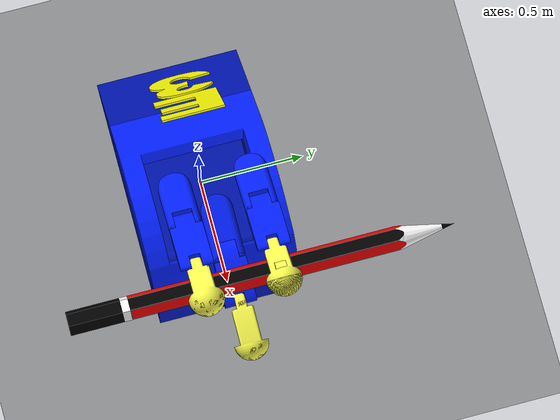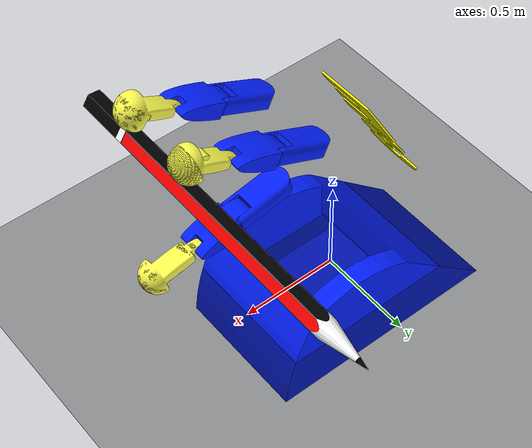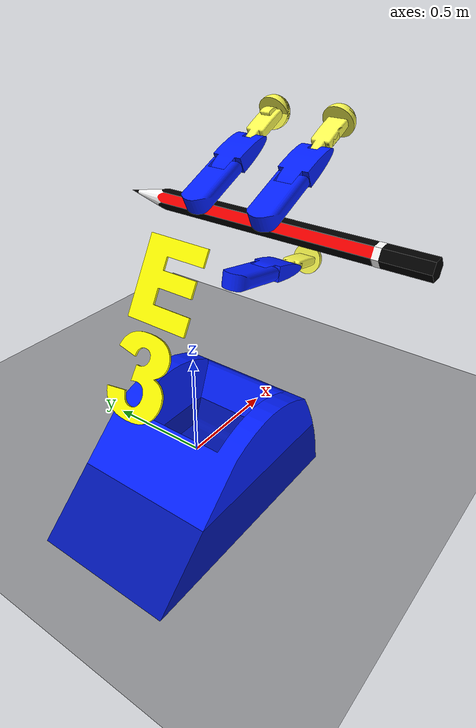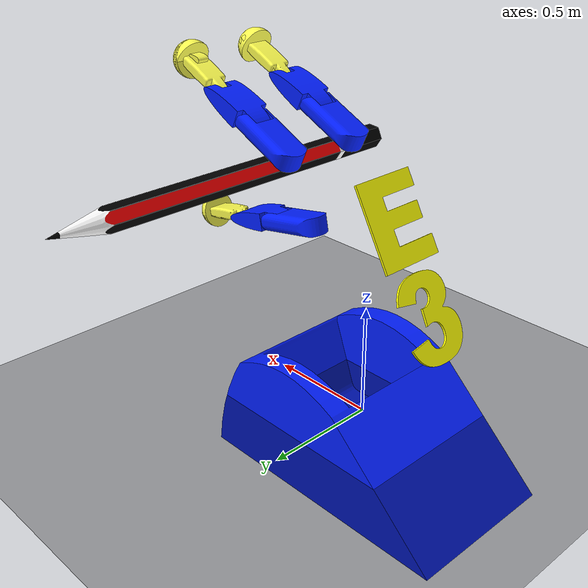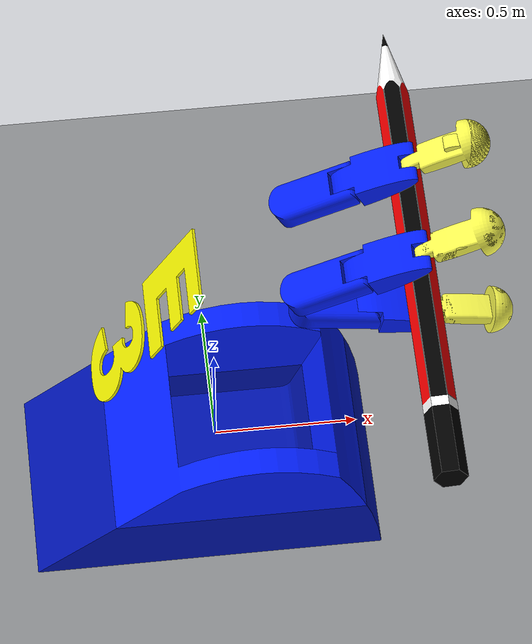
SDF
<?xml version="1.0" ?>

<sdf version="1.9">
  <world name="dexterous_world">
    <gravity>0.0 0.0 0.0</gravity>

    <physics name="4ms" type="dart">
      <max_step_size>0.004</max_step_size>
      <real_time_factor>1.0</real_time_factor>
    </physics>

    <gui fullscreen="0">

      <!-- 3D scene -->
      <plugin filename="MinimalScene" name="3D View">
        <gz-gui>
          <title>3D View</title>
          <property type="bool" key="showTitleBar">false</property>
          <property type="string" key="state">docked</property>
        </gz-gui>

        <engine>ogre2</engine>
        <scene>scene</scene>
        <ambient_light>0.4 0.4 0.4</ambient_light>
        <background_color>0.8 0.8 0.8</background_color>
        <!-- RB24's camera view-->

        <!-- Debugging camera view-->
        <camera_pose>-1.5 2.11 3 0 1 -1</camera_pose>

        <camera_clip>
          <near>0.25</near>
          <far>10000</far>
        </camera_clip>
      </plugin>

      <!-- Plugins that add functionality to the scene -->
      <plugin filename="EntityContextMenuPlugin" name="Entity context menu">
        <gz-gui>
          <property key="state" type="string">floating</property>
          <property key="width" type="double">5</property>
          <property key="height" type="double">5</property>
          <property key="showTitleBar" type="bool">false</property>
        </gz-gui>
      </plugin>
      <plugin filename="GzSceneManager" name="Scene Manager">
        <gz-gui>
          <property key="resizable" type="bool">false</property>
          <property key="width" type="double">5</property>
          <property key="height" type="double">5</property>
          <property key="state" type="string">floating</property>
          <property key="showTitleBar" type="bool">false</property>
        </gz-gui>
      </plugin>
      <plugin filename="InteractiveViewControl" name="Interactive view control">
        <gz-gui>
          <property key="resizable" type="bool">false</property>
          <property key="width" type="double">5</property>
          <property key="height" type="double">5</property>
          <property key="state" type="string">floating</property>
          <property key="showTitleBar" type="bool">false</property>
        </gz-gui>
      </plugin>
      <plugin filename="CameraTracking" name="Camera Tracking">
        <gz-gui>
          <property key="resizable" type="bool">false</property>
          <property key="width" type="double">5</property>
          <property key="height" type="double">5</property>
          <property key="state" type="string">floating</property>
          <property key="showTitleBar" type="bool">false</property>
        </gz-gui>
      </plugin>
      <plugin filename="MarkerManager" name="Marker manager">
        <gz-gui>
          <property key="resizable" type="bool">false</property>
          <property key="width" type="double">5</property>
          <property key="height" type="double">5</property>
          <property key="state" type="string">floating</property>
          <property key="showTitleBar" type="bool">false</property>
        </gz-gui>
      </plugin>
      <plugin filename="SelectEntities" name="Select Entities">
        <gz-gui>
          <anchors target="Select entities">
            <line own="right" target="right"/>
            <line own="top" target="top"/>
          </anchors>
          <property key="resizable" type="bool">false</property>
          <property key="width" type="double">5</property>
          <property key="height" type="double">5</property>
          <property key="state" type="string">floating</property>
          <property key="showTitleBar" type="bool">false</property>
        </gz-gui>
      </plugin>
      <plugin filename="VisualizationCapabilities" name="Visualization Capabilities">
        <gz-gui>
          <property key="resizable" type="bool">false</property>
          <property key="width" type="double">5</property>
          <property key="height" type="double">5</property>
          <property key="state" type="string">floating</property>
          <property key="showTitleBar" type="bool">false</property>
        </gz-gui>
      </plugin>

      <plugin filename="Spawn" name="Spawn Entities">
        <gz-gui>
          <anchors target="Select entities">
            <line own="right" target="right"/>
            <line own="top" target="top"/>
          </anchors>
          <property key="resizable" type="bool">false</property>
          <property key="width" type="double">5</property>
          <property key="height" type="double">5</property>
          <property key="state" type="string">floating</property>
          <property key="showTitleBar" type="bool">false</property>
        </gz-gui>
      </plugin>

      <!-- World control -->
      <plugin filename="WorldControl" name="World control">
        <gz-gui>
          <title>World control</title>
          <property type="bool" key="showTitleBar">false</property>
          <property type="bool" key="resizable">false</property>
          <property type="double" key="height">72</property>
          <property type="double" key="width">121</property>
          <property type="double" key="z">1</property>

          <property type="string" key="state">floating</property>
          <anchors target="3D View">
            <line own="left" target="left"/>
            <line own="bottom" target="bottom"/>
          </anchors>
        </gz-gui>

        <play_pause>true</play_pause>
        <step>true</step>
        <start_paused>true</start_paused>
        <use_event>true</use_event>

      </plugin>

      <!-- World statistics -->
      <plugin filename="WorldStats" name="World stats">
        <gz-gui>
          <title>World stats</title>
          <property type="bool" key="showTitleBar">false</property>
          <property type="bool" key="resizable">false</property>
          <property type="double" key="height">110</property>
          <property type="double" key="width">290</property>
          <property type="double" key="z">1</property>

          <property type="string" key="state">floating</property>
          <anchors target="3D View">
            <line own="right" target="right"/>
            <line own="bottom" target="bottom"/>
          </anchors>
        </gz-gui>

        <sim_time>true</sim_time>
        <real_time>true</real_time>
        <real_time_factor>true</real_time_factor>
        <iterations>true</iterations>
      </plugin>

      <!-- Insert simple shapes -->
      <plugin filename="Shapes" name="Shapes">
        <gz-gui>
          <property key="resizable" type="bool">false</property>
          <property key="x" type="double">0</property>
          <property key="y" type="double">0</property>
          <property key="width" type="double">250</property>
          <property key="height" type="double">50</property>
          <property key="state" type="string">floating</property>
          <property key="showTitleBar" type="bool">false</property>
          <property key="cardBackground" type="string">#666666</property>
        </gz-gui>
      </plugin>

      <!-- Insert lights -->
      <plugin filename="Lights" name="Lights">
        <gz-gui>
          <property key="resizable" type="bool">false</property>
          <property key="x" type="double">250</property>
          <property key="y" type="double">0</property>
          <property key="width" type="double">150</property>
          <property key="height" type="double">50</property>
          <property key="state" type="string">floating</property>
          <property key="showTitleBar" type="bool">false</property>
          <property key="cardBackground" type="string">#666666</property>
        </gz-gui>
      </plugin>

      <!-- Translate / rotate -->
      <plugin filename="TransformControl" name="Transform control">
        <gz-gui>
          <property key="resizable" type="bool">false</property>
          <property key="x" type="double">0</property>
          <property key="y" type="double">50</property>
          <property key="width" type="double">250</property>
          <property key="height" type="double">50</property>
          <property key="state" type="string">floating</property>
          <property key="showTitleBar" type="bool">false</property>
          <property key="cardBackground" type="string">#777777</property>
        </gz-gui>

        <!-- disable legacy features used to connect this plugin to GzScene3D -->
        <legacy>false</legacy>
      </plugin>

      <!-- Screenshot -->
      <plugin filename="Screenshot" name="Screenshot">
        <gz-gui>
          <property key="resizable" type="bool">false</property>
          <property key="x" type="double">250</property>
          <property key="y" type="double">50</property>
          <property key="width" type="double">50</property>
          <property key="height" type="double">50</property>
          <property key="state" type="string">floating</property>
          <property key="showTitleBar" type="bool">false</property>
          <property key="cardBackground" type="string">#777777</property>
        </gz-gui>
      </plugin>

      <!-- Video recorder -->
      <plugin filename="VideoRecorder" name="VideoRecorder">
        <gz-gui>
          <property key="resizable" type="bool">false</property>
          <property key="x" type="double">300</property>
          <property key="y" type="double">50</property>
          <property key="width" type="double">50</property>
          <property key="height" type="double">50</property>
          <property key="state" type="string">floating</property>
          <property key="showTitleBar" type="bool">false</property>
          <property key="cardBackground" type="string">#777777</property>
        </gz-gui>

        <record_video>
          <use_sim_time>true</use_sim_time>
          <lockstep>true</lockstep>
          <bitrate>4000000</bitrate>
        </record_video>

        <!-- disable legacy features used to connect this plugin to GzScene3D -->
        <legacy>false</legacy>
      </plugin>

      <!-- Inspector -->
      <plugin filename="ComponentInspector" name="Component inspector">
        <gz-gui>
          <property type="string" key="state">docked_collapsed</property>
        </gz-gui>
      </plugin>

      <!-- Entity tree -->
      <plugin filename="EntityTree" name="Entity tree">
        <gz-gui>
          <property type="string" key="state">docked_collapsed</property>
        </gz-gui>
      </plugin>

      <!-- View angle -->
      <plugin filename="ViewAngle" name="View angle">
        <gz-gui>
          <property type="string" key="state">docked_collapsed</property>
        </gz-gui>

        <!-- disable legacy features used to connect this plugin to GzScene3D -->
        <legacy>false</legacy>
      </plugin>

    </gui>

    <plugin
      filename="gz-sim-physics-system"
      name="gz::sim::systems::Physics">
    </plugin>
    <plugin
      filename="gz-sim-user-commands-system"
      name="gz::sim::systems::UserCommands">
    </plugin>
    <plugin
      filename="gz-sim-sensors-system"
      name="gz::sim::systems::Sensors">
      <render_engine>ogre2</render_engine>
      <disable_on_drained_battery>true</disable_on_drained_battery>
    </plugin>
    <plugin
      filename="gz-sim-imu-system"
      name="gz::sim::systems::Imu">
    </plugin>
    <plugin
      filename="gz-sim-magnetometer-system"
      name="gz::sim::systems::Magnetometer">
    </plugin>
    <plugin
      filename="gz-sim-forcetorque-system"
      name="gz::sim::systems::ForceTorque">
    </plugin>
    <plugin
      filename="gz-sim-particle-emitter2-system"
      name="gz::sim::systems::ParticleEmitter2">
    </plugin>
    <plugin
      filename="gz-sim-scene-broadcaster-system"
      name="gz::sim::systems::SceneBroadcaster">
    </plugin>
    <plugin
      filename="gz-sim-contact-system"
      name="gz::sim::systems::Contact">
    </plugin>
    <plugin
      filename="gz-sim-navsat-system"
      name="gz::sim::systems::NavSat">
    </plugin>

    <light type="directional" name="sun">
      <cast_shadows>true</cast_shadows>
      <pose>0 0 10 0 0 0</pose>
      <diffuse>0.8 0.8 0.8 1</diffuse>
      <specular>0 0 0 1</specular>
      <attenuation>
        <range>1000</range>
        <constant>0.9</constant>
        <linear>0.01</linear>
        <quadratic>0.001</quadratic>
      </attenuation>
      <direction>-0.5 0.1 -0.9</direction>
    </light>

    <model name="ground_plane">
      <static>true</static>
      <link name="link">
        <collision name="collision">
          <geometry>
            <plane>
              <normal>0 0 1</normal>
              <size>100 100</size>
            </plane>
          </geometry>
          <surface>
            <friction>
              <ode>
                <mu>50</mu>
              </ode>
              <bullet>
                <friction>1</friction>
                <rolling_friction>0.1</rolling_friction>
              </bullet>
            </friction>
          </surface>
        </collision>
        <visual name="visual">
          <geometry>
            <plane>
              <normal>0 0 1</normal>
              <size>100 100</size>
            </plane>
          </geometry>
          <material>
            <ambient>0 0 0 0</ambient>
            <diffuse>0 0 0 0</diffuse>
            <specular>0 0 0 0</specular>
          </material>
        </visual>
      </link>
    </model>

    <model name="hand">
      <include>
        <name>hand</name>
        <pose>0 0 0 0 0 0</pose>
        <uri>hand</uri>
      </include>
    </model>

    <model name='hand_base'>
      <static>true</static>
      <link name='hand_base_link'>
        <collision name="collision_base_0">
          <pose>-0.06 0 0.145 0 0 3.14159</pose>
          <geometry>
            <mesh>
              <uri>file:/hand_base/meshes/base_link.STL</uri>
              <scale> 1 1 1 </scale>
            </mesh>
          </geometry>
        </collision>
      </link>
    </model>

    <include>
      <name>pencil</name>
      <pose>0.7 -0.5 0.9 0 0 1.5708</pose>
      <uri>pencil</uri>
    </include>

  </world>
</sdf>

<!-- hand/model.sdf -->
<!--

MOVING JOINTS FROM TERMINAL
gz topic -t "/j_f1" -m gz.msgs.Double -p "data: 0.1"
gz topic -t "/j_f1" -m gz.msgs.Double -p "data: 1.0"
gz topic -t "/j_f1_1_1" -m gz.msgs.Double -p "data: 1.0"

-->

<sdf version="1.6">
  <model name='hand'>
    <link name='base_link'>
      <inertial>
        <pose>-0.096485506852520997 -8.2497903641548694e-05 0.45614879243267747 0 0 0</pose>
        <mass>226.56733638999501</mass>
        <inertia>
          <ixx>24.089482545089311</ixx>
          <ixy>0.019315845782163631</ixy>
          <ixz>-2.3374813410854669</ixz>
          <iyy>24.47242417428097</iyy>
          <iyz>0.043346057388202873</iyz>
          <izz>9.944496794442129</izz>
        </inertia>
      </inertial>
      <collision name='base_link_collision'>
        <pose>0 0 0 0 0 0</pose>
        <geometry>
          <mesh>
            <scale>1 1 1</scale>
            <uri>meshes/base_link.STL</uri>
          </mesh>
        </geometry>
      </collision>
      <collision name='base_link_fixed_joint_lump__e3_collision_1'>
        <pose>0 0 0 0 0 0</pose>
        <geometry>
          <mesh>
            <scale>1 1 1</scale>
            <uri>meshes/e3.STL</uri>
          </mesh>
        </geometry>
      </collision>
      <visual name='base_link_visual'>
        <pose>0 0 0 0 0 0</pose>
        <geometry>
          <mesh>
            <scale>1 1 1</scale>
            <uri>meshes/base_link.STL</uri>
          </mesh>
        </geometry>
        <material>
          <diffuse>0.0125000002 0.125 1 1</diffuse>
          <ambient>0.0125000002 0.125 1 1</ambient>
        </material>
      </visual>
      <visual name='base_link_fixed_joint_lump__e3_visual_1'>
        <pose>0 0 0 0 0 0</pose>
        <geometry>
          <mesh>
            <scale>1 1 1</scale>
            <uri>meshes/e3.STL</uri>
          </mesh>
        </geometry>
        <material>
          <diffuse>1 1 0 1</diffuse>
          <ambient>1 1 0 1</ambient>
        </material>
      </visual>
    </link>
    <joint name='fin1' type='revolute'>
      <pose relative_to='base_link'>0.29211782271097803 0.17499999999999999 1.14406683612052 -3.14159265358979 -0.43408152173267717 0</pose>
      <parent>base_link</parent>
      <child>finger_1</child>
      <axis>
        <xyz>0.429423079 0 -0.902854919</xyz>
        <limit>
          <lower>-1</lower>
          <upper>1</upper>
          <velocity>10.0</velocity>
          <effort>40.0</effort>
        </limit>
        <use_parent_model_frame>1</use_parent_model_frame>
      </axis>
    </joint>
    <link name='finger_1'>
      <pose relative_to='fin1'>0 0 0 0 0 0</pose>
      <inertial>
        <pose>0.058211400276604999 3.7693642374048199e-08 8.7344479426931798e-08 0 0 0</pose>
        <mass>2.6229121724070201</mass>
        <inertia>
          <ixx>0.0059915016755219003</ixx>
          <ixy>2.2318071196542098e-08</ixy>
          <ixz>1.3520039285168401e-08</ixz>
          <iyy>0.015359044539238901</iyy>
          <iyz>-1.6951400017024501e-07</iyz>
          <izz>0.018806558465592399</izz>
        </inertia>
      </inertial>
      <visual name='finger_1_visual'>
        <pose>0 0 0 0 0 0</pose>
        <geometry>
          <mesh>
            <scale>1 1 1</scale>
            <uri>meshes/finger_1.STL</uri>
          </mesh>
        </geometry>
        <material>
          <diffuse>0.0125000002 0.125 1 1</diffuse>
          <ambient>0.0125000002 0.125 1 1</ambient>
        </material>
      </visual>
    </link>
    <joint name='fin1_1' type='revolute'>
      <pose relative_to='finger_1'>0.179528059776071 0 0 -1.5707963267949003 0 0</pose>
      <parent>finger_1</parent>
      <child>finger_1_1</child>
      <axis>
        <xyz>0 1 0</xyz>
        <limit>
          <lower>-1.4</lower>
          <upper>2.3</upper>
          <velocity>10.0</velocity>
          <effort>40.0</effort>
        </limit>
        <use_parent_model_frame>1</use_parent_model_frame>
      </axis>
    </joint>
    <link name='finger_1_1'>
      <pose relative_to='fin1_1'>0 0 0 0 0 0</pose>
      <inertial>
        <pose>0.109229658566421 -1.08218189409648e-07 2.7742796754326401e-07 0 0 0</pose>
        <mass>2.3996920177896799</mass>
        <inertia>
          <ixx>0.0050192735259789803</ixx>
          <ixy>-1.6397320555939901e-08</ixy>
          <ixz>-2.2834803418470701e-08</ixz>
          <iyy>0.0157115159697322</iyy>
          <iyz>1.5705094851416899e-09</iyz>
          <izz>0.0126581692982653</izz>
        </inertia>
      </inertial>
      <visual name='finger_1_1_visual'>
        <pose>0 0 0 0 0 0</pose>
        <geometry>
          <mesh>
            <scale>1 1 1</scale>
            <uri>meshes/finger_1_1.STL</uri>
          </mesh>
        </geometry>
        <material>
          <diffuse>0.0125000002 0.125 1 1</diffuse>
          <ambient>0.0125000002 0.125 1 1</ambient>
        </material>
      </visual>
    </link>
    <joint name='fin1_1_1' type='revolute'>
      <pose relative_to='finger_1_1'>0.23547194022392801 0 0 3.14159265358979 0 0</pose>
      <parent>finger_1_1</parent>
      <child>finger_1_1_1</child>
      <axis>
        <xyz>0 1 0</xyz>
        <limit>
          <lower>0</lower>
          <upper>2.6</upper>
          <velocity>10.0</velocity>
          <effort>40.0</effort>
        </limit>
        <use_parent_model_frame>1</use_parent_model_frame>
      </axis>
    </joint>
    <link name='finger_1_1_1'>
      <pose relative_to='fin1_1_1'>0 0 0 0 0 0</pose>
      <inertial>
        <pose>0.18046543609597901 -4.3488324885654423e-08 4.2364613261902622e-08 0 0 0</pose>
        <mass>3.8485114986425999</mass>
        <inertia>
          <ixx>0.0070444292456033003</ixx>
          <ixy>3.0605086531265923e-08</ixy>
          <ixz>4.6920530719751049e-08</ixz>
          <iyy>0.024438294622259191</iyy>
          <iyz>-1.2629549545478591e-09</iyz>
          <izz>0.023473056920593399</izz>
        </inertia>
      </inertial>
      <collision name='finger_1_1_1_collision'>
        <pose>0 0 0 0 0 0</pose>
        <geometry>
          <mesh>
            <scale>1 1 1</scale>
            <uri>meshes/finger_1_1_1.STL</uri>
          </mesh>
        </geometry>
      </collision>
      <collision name='finger_1_1_1_fixed_joint_lump__finger_1_eef_collision_1'>
        <pose>0.20499999999999999 0 0 1.5707963267949003 0 0</pose>
        <geometry>
          <mesh>
            <scale>1 1 1</scale>
            <uri>meshes/finger_1_eef.STL</uri>
          </mesh>
        </geometry>
          <surface>
            <friction>
              <ode>
                <mu>50</mu>
              </ode>
              <bullet>
                <friction>1</friction>
                <rolling_friction>0.1</rolling_friction>
              </bullet>
            </friction>
          </surface>
      </collision>
      <visual name='finger_1_1_1_visual'>
        <pose>0 0 0 0 0 0</pose>
        <geometry>
          <mesh>
            <scale>1 1 1</scale>
            <uri>meshes/finger_1_1_1.STL</uri>
          </mesh>
        </geometry>
        <material>
          <diffuse>1 1 0.313749969 1</diffuse>
          <ambient>1 1 0.313749969 1</ambient>
        </material>
      </visual>
      <visual name='finger_1_1_1_fixed_joint_lump__finger_1_eef_visual_1'>
        <pose>0.20499999999999999 0 0 1.5707963267949003 0 0</pose>
        <geometry>
          <mesh>
            <scale>1 1 1</scale>
            <uri>meshes/finger_1_eef.STL</uri>
          </mesh>
        </geometry>
        <material>
          <diffuse>1 1 0.313749969 1</diffuse>
          <ambient>1 1 0.313749969 1</ambient>
        </material>
      </visual>
    </link>
    <joint name='fin2' type='revolute'>
      <pose relative_to='base_link'>0.33819109946550702 0 0.77463219693708496 0 0.19423717547986299 0</pose>
      <parent>base_link</parent>
      <child>finger_2</child>
      <axis>
        <xyz>0.19081 0 0.98163</xyz>
        <limit>
          <lower>-1</lower>
          <upper>1</upper>
          <velocity>10.0</velocity>
          <effort>40.0</effort>
        </limit>
        <use_parent_model_frame>1</use_parent_model_frame>
      </axis>
    </joint>
    <link name='finger_2'>
      <pose relative_to='fin2'>0 0 0 0 0 0</pose>
      <inertial>
        <pose>0.058211612090393897 1.11964540194798e-07 -3.9154802655705399e-07 0 0 0</pose>
        <mass>2.6229064249963101</mass>
        <inertia>
          <ixx>0.0059916880790047396</ixx>
          <ixy>3.8292790022096102e-08</ixy>
          <ixz>-4.2821844060264602e-08</ixz>
          <iyy>0.0153587683117724</iyy>
          <iyz>-1.29684289260522e-07</iyz>
          <izz>0.018806435856240498</izz>
        </inertia>
      </inertial>
      <visual name='finger_2_visual'>
        <pose>0 0 0 0 0 0</pose>
        <geometry>
          <mesh>
            <scale>1 1 1</scale>
            <uri>meshes/finger_2.STL</uri>
          </mesh>
        </geometry>
        <material>
          <diffuse>0.0125000002 0.125 1 1</diffuse>
          <ambient>0.0125000002 0.125 1 1</ambient>
        </material>
      </visual>
    </link>
    <joint name='fin2_1' type='revolute'>
      <pose relative_to='finger_2'>0.179528059776071 0 0 -1.5707963267949003 0 0</pose>
      <parent>finger_2</parent>
      <child>finger_2_1</child>
      <axis>
        <xyz>0 -1 0</xyz>
        <limit>
          <lower>-1.4</lower>
          <upper>2.3</upper>
          <velocity>10.0</velocity>
          <effort>40.0</effort>
        </limit>
        <use_parent_model_frame>1</use_parent_model_frame>
      </axis>
    </joint>
    <link name='finger_2_1'>
      <pose relative_to='fin2_1'>0 0 0 0 0 0</pose>
      <inertial>
        <pose>0.10923030099818699 7.04610364499203e-08 1.17474904248738e-07 0 0 0</pose>
        <mass>2.3997039228608199</mass>
        <inertia>
          <ixx>0.0050192895512854701</ixx>
          <ixy>-3.5157104960018197e-08</ixy>
          <ixz>2.25113499508722e-08</ixz>
          <iyy>0.015711697649569499</iyy>
          <iyz>8.6135951831955895e-10</iyz>
          <izz>0.012658338570588699</izz>
        </inertia>
      </inertial>
      <visual name='finger_2_1_visual'>
        <pose>0 0 0 0 0 0</pose>
        <geometry>
          <mesh>
            <scale>1 1 1</scale>
            <uri>meshes/finger_2_1.STL</uri>
          </mesh>
        </geometry>
        <material>
          <diffuse>0.0125000002 0.125 1 1</diffuse>
          <ambient>0.0125000002 0.125 1 1</ambient>
        </material>
      </visual>
    </link>
    <joint name='fin2_1_1' type='revolute'>
      <pose relative_to='finger_2_1'>0.235471940223929 0 0 3.14159265358979 0 0</pose>
      <parent>finger_2_1</parent>
      <child>finger_2_1_1</child>
      <axis>
        <xyz>0 -1 0</xyz>
        <limit>
          <lower>0</lower>
          <upper>2.6</upper>
          <velocity>10.0</velocity>
          <effort>40.0</effort>
        </limit>
        <use_parent_model_frame>1</use_parent_model_frame>
      </axis>
    </joint>
    <link name='finger_2_1_1'>
      <pose relative_to='fin2_1_1'>0 0 0 0 0 0</pose>
      <inertial>
        <pose>0.18046559586156019 3.0182090215991101e-07 -9.7449637248502867e-10 0 0 0</pose>
        <mass>3.84849035331824</mass>
        <inertia>
          <ixx>0.0070443926772622003</ixx>
          <ixy>1.2344578395411439e-08</ixy>
          <ixz>1.2731910430533159e-08</ixz>
          <iyy>0.02443789481746381</iyy>
          <iyz>5.5702108021487191e-10</iyz>
          <izz>0.02347265374004737</izz>
        </inertia>
      </inertial>
      <collision name='finger_2_1_1_collision'>
        <pose>0 0 0 0 0 0</pose>
        <geometry>
          <mesh>
            <scale>1 1 1</scale>
            <uri>meshes/finger_2_1_1.STL</uri>
          </mesh>
        </geometry>
      </collision>
      <collision name='finger_2_1_1_fixed_joint_lump__finger_2_eef_collision_1'>
        <pose>0.20499999999999999 0 0 1.5707963267949003 0 0</pose>
        <geometry>
          <mesh>
            <scale>1 1 1</scale>
            <uri>meshes/finger_2_eef.STL</uri>
          </mesh>
        </geometry>
          <surface>
            <friction>
              <ode>
                <mu>50</mu>
              </ode>
              <bullet>
                <friction>1</friction>
                <rolling_friction>0.1</rolling_friction>
              </bullet>
            </friction>
          </surface>
      </collision>
      <visual name='finger_2_1_1_visual'>
        <pose>0 0 0 0 0 0</pose>
        <geometry>
          <mesh>
            <scale>1 1 1</scale>
            <uri>meshes/finger_2_1_1.STL</uri>
          </mesh>
        </geometry>
        <material>
          <diffuse>1 1 0.313749969 1</diffuse>
          <ambient>1 1 0.313749969 1</ambient>
        </material>
      </visual>
      <visual name='finger_2_1_1_fixed_joint_lump__finger_2_eef_visual_1'>
        <pose>0.20499999999999999 0 0 1.5707963267949003 0 0</pose>
        <geometry>
          <mesh>
            <scale>1 1 1</scale>
            <uri>meshes/finger_2_eef.STL</uri>
          </mesh>
        </geometry>
        <material>
          <diffuse>1 1 0.313749969 1</diffuse>
          <ambient>1 1 0.313749969 1</ambient>
        </material>
      </visual>
    </link>
    <joint name='fin3' type='revolute'>
      <pose relative_to='base_link'>0.29211782271097803 -0.17499999999999999 1.14406683612052 3.14159265358979 -0.43408152173267717 0</pose>
      <parent>base_link</parent>
      <child>finger_3</child>
      <axis>
        <xyz>0.429423079 0 -0.902854919</xyz>
        <limit>
          <lower>-1</lower>
          <upper>1</upper>
          <velocity>10.0</velocity>
          <effort>40.0</effort>
        </limit>
        <use_parent_model_frame>1</use_parent_model_frame>
      </axis>
    </joint>
    <link name='finger_3'>
      <pose relative_to='fin3'>0 0 0 0 0 0</pose>
      <inertial>
        <pose>0.058211400276605901 3.7693641985470101e-08 8.7344478871820299e-08 0 0 0</pose>
        <mass>2.6229121724070099</mass>
        <inertia>
          <ixx>0.0059915016755219298</ixx>
          <ixy>2.2318071187091801e-08</ixy>
          <ixz>1.3520039289722e-08</ixz>
          <iyy>0.015359044539238999</iyy>
          <iyz>-1.69514000165525e-07</iyz>
          <izz>0.0188065584655925</izz>
        </inertia>
      </inertial>
      <visual name='finger_3_visual'>
        <pose>0 0 0 0 0 0</pose>
        <geometry>
          <mesh>
            <scale>1 1 1</scale>
            <uri>meshes/finger_3.STL</uri>
          </mesh>
        </geometry>
        <material>
          <diffuse>0.0125000002 0.125 1 1</diffuse>
          <ambient>0.0125000002 0.125 1 1</ambient>
        </material>
      </visual>
    </link>
    <joint name='fin3_1' type='revolute'>
      <pose relative_to='finger_3'>0.179528059776072 0 0 -1.5707963267949003 0 0</pose>
      <parent>finger_3</parent>
      <child>finger_3_1</child>
      <axis>
        <xyz>0 1 0</xyz>
        <limit>
          <lower>-1.4</lower>
          <upper>2.3</upper>
          <velocity>10.0</velocity>
          <effort>40.0</effort>
        </limit>
        <use_parent_model_frame>1</use_parent_model_frame>
      </axis>
    </joint>
    <link name='finger_3_1'>
      <pose relative_to='fin3_1'>0 0 0 0 0 0</pose>
      <inertial>
        <pose>0.109229658566421 -1.08218189187603e-07 2.7742796759877601e-07 0 0 0</pose>
        <mass>2.3996920177896701</mass>
        <inertia>
          <ixx>0.0050192735259789499</ixx>
          <ixy>-1.6397320560818801e-08</ixy>
          <ixz>-2.28348034226873e-08</ixz>
          <iyy>0.015711515969731901</iyy>
          <iyz>1.570509486711e-09</iyz>
          <izz>0.0126581692982651</izz>
        </inertia>
      </inertial>
      <visual name='finger_3_1_visual'>
        <pose>0 0 0 0 0 0</pose>
        <geometry>
          <mesh>
            <scale>1 1 1</scale>
            <uri>meshes/finger_3_1.STL</uri>
          </mesh>
        </geometry>
        <material>
          <diffuse>0.0125000002 0.125 1 1</diffuse>
          <ambient>0.0125000002 0.125 1 1</ambient>
        </material>
      </visual>
    </link>
    <joint name='fin3_1_1' type='revolute'>
      <pose relative_to='finger_3_1'>0.235471940223929 0 0 0 0 0</pose>
      <parent>finger_3_1</parent>
      <child>finger_3_1_1</child>
      <axis>
        <xyz>0 1 0</xyz>
        <limit>
          <lower>0</lower>
          <upper>2.6</upper>
          <velocity>10.0</velocity>
          <effort>40.0</effort>
        </limit>
        <use_parent_model_frame>1</use_parent_model_frame>
      </axis>
    </joint>
    <link name='finger_3_1_1'>
      <pose relative_to='fin3_1_1'>0 0 0 0 0 0</pose>
      <inertial>
        <pose>0.18046543609597901 -4.3488324719120983e-08 4.2364613039858017e-08 0 0 0</pose>
        <mass>3.8485114986425599</mass>
        <inertia>
          <ixx>0.0070444292456031997</ixx>
          <ixy>3.0605086511316623e-08</ixy>
          <ixz>4.6920530721731657e-08</ixz>
          <iyy>0.02443829462225899</iyy>
          <iyz>-1.262954955236258e-09</iyz>
          <izz>0.023473056920593201</izz>
        </inertia>
      </inertial>
      <collision name='finger_3_1_1_collision'>
        <pose>0 0 0 0 0 0</pose>
        <geometry>
          <mesh>
            <scale>1 1 1</scale>
            <uri>meshes/finger_3_1_1.STL</uri>
          </mesh>
        </geometry>
      </collision>
      <collision name='finger_3_1_1_fixed_joint_lump__finger_3_eef_collision_1'>
        <pose>0.20499999999999999 0 0 1.5707963267949003 0 0</pose>
        <geometry>
          <mesh>
            <scale>1 1 1</scale>
            <uri>meshes/finger_3_eef.STL</uri>
          </mesh>
        </geometry>
          <surface>
            <friction>
              <ode>
                <mu>50</mu>
              </ode>
              <bullet>
                <friction>1</friction>
                <rolling_friction>0.1</rolling_friction>
              </bullet>
            </friction>
          </surface>
      </collision>
      <visual name='finger_3_1_1_visual'>
        <pose>0 0 0 0 0 0</pose>
        <geometry>
          <mesh>
            <scale>1 1 1</scale>
            <uri>meshes/finger_3_1_1.STL</uri>
          </mesh>
        </geometry>
        <material>
          <diffuse>1 1 0.313749969 1</diffuse>
          <ambient>1 1 0.313749969 1</ambient>
        </material>
      </visual>
      <visual name='finger_3_1_1_fixed_joint_lump__finger_3_eef_visual_1'>
        <pose>0.20499999999999999 0 0 1.5707963267949003 0 0</pose>
        <geometry>
          <mesh>
            <scale>1 1 1</scale>
            <uri>meshes/finger_3_eef.STL</uri>
          </mesh>
        </geometry>
        <material>
          <diffuse>1 1 0.313749969 1</diffuse>
          <ambient>1 1 0.313749969 1</ambient>
        </material>
      </visual>
    </link>
    <frame name='e_3' attached_to='base_link'>
      <pose>0 0 0 0 0 0</pose>
    </frame>
    <frame name='e3' attached_to='e_3'>
      <pose>0 0 0 0 0 0</pose>
    </frame>
    <frame name='fin1_eef' attached_to='finger_1_1_1'>
      <pose>0.20499999999999999 0 0 1.5707963267949003 0 0</pose>
    </frame>
    <frame name='finger_1_eef' attached_to='fin1_eef'>
      <pose>0 0 0 0 0 0</pose>
    </frame>
    <frame name='fin2_eef' attached_to='finger_2_1_1'>
      <pose>0.20499999999999999 0 0 1.5707963267949003 0 0</pose>
    </frame>
    <frame name='finger_2_eef' attached_to='fin2_eef'>
      <pose>0 0 0 0 0 0</pose>
    </frame>
    <frame name='fin3_eef' attached_to='finger_3_1_1'>
      <pose>0.20499999999999999 0 0 1.5707963267949003 0 0</pose>
    </frame>
    <frame name='finger_3_eef' attached_to='fin3_eef'>
      <pose>0 0 0 0 0 0</pose>
    </frame>

    <!-- Finger 1 Joints -->
    <plugin
      filename='gz-sim-joint-position-controller-system'
      name='gz::sim::systems::JointPositionController'>
      <joint_name>fin1</joint_name>
      <topic>j_f1</topic>
      <p_gain>50</p_gain>
      <i_gain>10</i_gain>
      <d_gain>10</d_gain>
    </plugin>
    <plugin
      filename='gz-sim-joint-position-controller-system'
      name='gz::sim::systems::JointPositionController'>
      <joint_name>fin1_1</joint_name>
      <topic>j_f1_1</topic>
      <p_gain>50</p_gain>
      <i_gain>10</i_gain>
      <d_gain>10</d_gain>
    </plugin>
    <plugin
      filename='gz-sim-joint-position-controller-system'
      name='gz::sim::systems::JointPositionController'>
      <joint_name>fin1_1_1</joint_name>
      <topic>j_f1_1_1</topic>
      <p_gain>50</p_gain>
      <i_gain>10</i_gain>
      <d_gain>10</d_gain>
    </plugin>

    <!-- Finger 2 Joints -->
    <plugin
      filename='gz-sim-joint-position-controller-system'
      name='gz::sim::systems::JointPositionController'>
      <joint_name>fin2</joint_name>
      <topic>j_f2</topic>
      <p_gain>50</p_gain>
      <i_gain>10</i_gain>
      <d_gain>10</d_gain>
    </plugin>
    <plugin
      filename='gz-sim-joint-position-controller-system'
      name='gz::sim::systems::JointPositionController'>
      <joint_name>fin2_1</joint_name>
      <topic>j_f2_1</topic>
      <p_gain>50</p_gain>
      <i_gain>10</i_gain>
      <d_gain>10</d_gain>
    </plugin>
    <plugin
      filename='gz-sim-joint-position-controller-system'
      name='gz::sim::systems::JointPositionController'>
      <joint_name>fin2_1_1</joint_name>
      <topic>j_f2_1_1</topic>
      <p_gain>50</p_gain>
      <i_gain>10</i_gain>
      <d_gain>10</d_gain>
    </plugin>

    <!-- Finger 3 Joints -->
    <plugin
      filename='gz-sim-joint-position-controller-system'
      name='gz::sim::systems::JointPositionController'>
      <joint_name>fin3</joint_name>
      <topic>j_f3</topic>
      <p_gain>50</p_gain>
      <i_gain>10</i_gain>
      <d_gain>10</d_gain>
    </plugin>
    <plugin
      filename='gz-sim-joint-position-controller-system'
      name='gz::sim::systems::JointPositionController'>
      <joint_name>fin3_1</joint_name>
      <topic>j_f3_1</topic>
      <p_gain>50</p_gain>
      <i_gain>10</i_gain>
      <d_gain>10</d_gain>
    </plugin>
    <plugin
      filename='gz-sim-joint-position-controller-system'
      name='gz::sim::systems::JointPositionController'>
      <joint_name>fin3_1_1</joint_name>
      <topic>j_f3_1_1</topic>
      <p_gain>50</p_gain>
      <i_gain>10</i_gain>
      <d_gain>10</d_gain>
    </plugin>
  </model>
</sdf>

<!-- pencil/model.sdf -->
<sdf version="1.10">
  <model name='pencil'>
    <link name='base_footprint'>
      <inertial>
        <pose>0.055716947206447633 0 0 0 0 0</pose>
        <mass>0.014195312999999999</mass>
        <inertia>
          <ixx>1.92294128e-07</ixx>
          <ixy>-1.1869978905999999e-21</ixy>
          <ixz>1.22420016566e-21</ixz>
          <iyy>4.2914108586065313e-05</iyy>
          <iyz>-1.9857999999991919e-15</iyz>
          <izz>4.2914108586065313e-05</izz>
        </inertia>
      </inertial>
      <collision name='base_footprint_fixed_joint_lump__point_link_collision_1'>
        <pose>1.5149999999999999 0 0 0 0.52359900000000004 1.5708000000000002</pose>
        <geometry>
          <mesh>
            <scale>1 1 1</scale>
            <uri>file://pencil/meshes/Pencil.dae</uri>
          </mesh>
        </geometry>
          <surface>
            <friction>
              <ode>
                <mu>500</mu>
              </ode>
              <bullet>
                <friction>100</friction>
                <rolling_friction>100</rolling_friction>
              </bullet>
            </friction>
          </surface>
      </collision>
      <visual name='base_footprint_fixed_joint_lump__base_link_visual'>
        <pose>1.5149999999999999 0 0 1.2819752903463868e-16 0.52359900000000004 1.5708000000000002</pose>
        <geometry>
          <mesh>
            <scale>1 1 1</scale>
            <uri>file://pencil/meshes/Pencil.dae</uri>
          </mesh>
        </geometry>
      </visual>
      <visual name='base_footprint_fixed_joint_lump__point_link_visual_1'>
        <pose>1.5149999999999999 0 0 0 0 0</pose>
        <geometry>
          <mesh>
            <scale>1 1 1</scale>
            <uri>file://pencil/meshes/point_link.STL</uri>
          </mesh>
        </geometry>
      </visual>
    </link>
    <frame name='/point_joint' attached_to='base_link'>
      <pose>1.5149999999999999 0 0 3.14159 3.14159 3.14159</pose>
    </frame>
    <frame name='point_link' attached_to='/point_joint'>
      <pose>0 0 0 3.14159 3.14159 3.14159</pose>
    </frame>
    <frame name='base_footprint_joint' attached_to='base_footprint'>
      <pose>0 0 0 3.14159 3.14159 3.14159</pose>
    </frame>
    <frame name='base_link' attached_to='base_footprint_joint'>
      <pose>0 0 0 3.14159 3.14159 3.14159</pose>
    </frame>
  </model>
</sdf>
